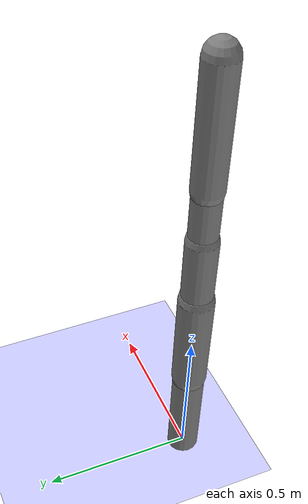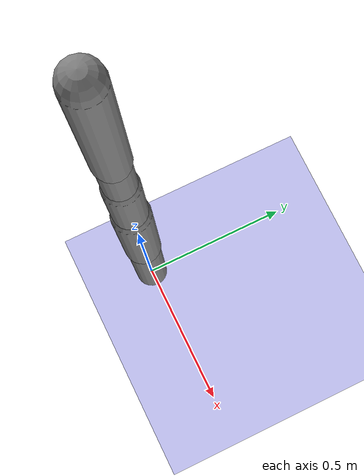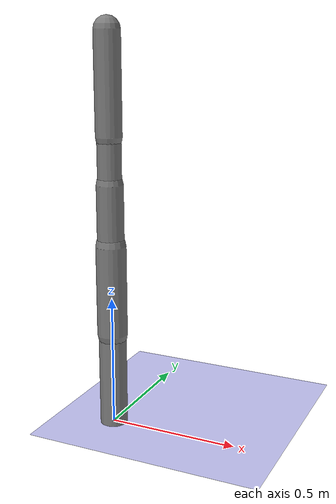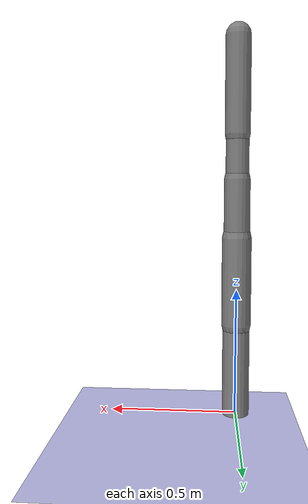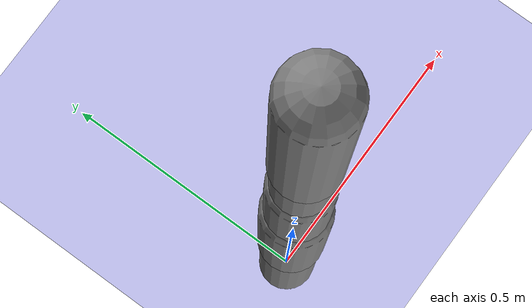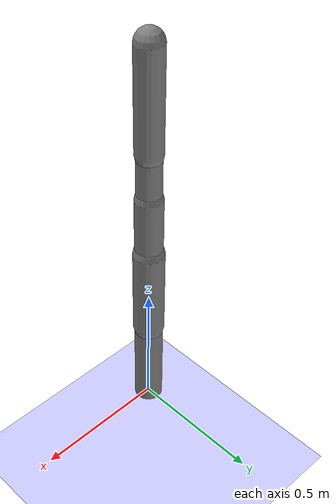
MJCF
<?xml version='1.0' encoding='UTF-8'?>
<mujoco model="robot_model">
  <worldbody>
    <light name="light" pos="0 -3 10" dir="0 0.5 -1" diffuse=".8 .8 .8" specular="0.1 0.1 0.1"/>
    <geom name="floor" type="plane" size="10.0 10.0 0.1" pos="0 0 0" rgba="0.8 0.8 1 1" contype="2" conaffinity="1"/>
    <body name="limb0" pos="0 0 0">
      <geom type="capsule" fromto="0 0 0 0 0 0.43667502796948376" size="0.05318770075002364" density="510.93174522819857" contype="1" conaffinity="2"/>
      <site type="sphere" size="0.01" name="limb0_site0" pos="0 0 0.36127572358789767"/>
      <freejoint name="limb0_root"/>
      <body name="limb1" pos="0 0 0.36127572358789767">
        <geom type="capsule" fromto="0 0 0 0 0 0.34784341191026547" size="0.05780096325172323" density="1003.386613734127" contype="1" conaffinity="2"/>
        <site type="sphere" size="0.01" name="limb1_site0" pos="0 0 0.31642392427221155"/>
        <site type="sphere" size="0.01" name="limb1_site1" pos="0 0 0.12395905969548064"/>
        <site type="sphere" size="0.01" name="limb1_site2" pos="0 0 0.06927704373718688"/>
        <body name="limb2" pos="0 0 0.31642392427221155">
          <geom type="capsule" fromto="0 0 0 0 0 0.5" size="0.045329815490319995" density="1017.2531489540214" contype="1" conaffinity="2"/>
          <site type="sphere" size="0.01" name="limb2_site0" pos="0 0 0.28431863432086774"/>
          <site type="sphere" size="0.01" name="limb2_site1" pos="0 0 0.4365154153176309"/>
          <body name="limb3" pos="0 0 0.28431863432086774">
            <geom type="capsule" fromto="0 0 0 0 0 0.19166066799868264" size="0.0314707546179414" density="956.2416848734547" contype="1" conaffinity="2"/>
            <joint name="joint_limb2_limb3_0" type="hinge" axis="0 1 0" range="-51.59203017742993 51.59203017742993" damping="5.0"/>
          </body>
          <body name="limb4" pos="0 0 0.4365154153176309">
            <geom type="capsule" fromto="0 0 0 0 0 0.378171156067034" size="0.04960379875638113" density="1020.0145094172238" contype="1" conaffinity="2"/>
            <joint name="joint_limb2_limb4_0" type="hinge" axis="1 0 0" range="-38.680136556965635 38.680136556965635" damping="5.0"/>
          </body>
          <joint name="joint_limb1_limb2_0" type="hinge" axis="0 1 0" range="-60.504894728636025 60.504894728636025" damping="5.0"/>
        </body>
        <body name="limb5" pos="0 0 0.12395905969548064">
          <geom type="capsule" fromto="0 0 0 0 0 0.4553959547646001" size="0.05112992904407712" density="905.1932138092933" contype="1" conaffinity="2"/>
          <joint name="joint_limb1_limb5_0" type="hinge" axis="0 0 1" range="-65.9823599983076 65.9823599983076" damping="5.0"/>
        </body>
        <body name="limb6" pos="0 0 0.06927704373718688">
          <geom type="capsule" fromto="0 0 0 0 0 0.44552404738132806" size="0.039556271122214166" density="1076.0934479971258" contype="1" conaffinity="2"/>
          <joint name="joint_limb1_limb6_0" type="hinge" axis="0 0 1" range="-20.0 20.0" damping="5.0"/>
        </body>
        <joint name="joint_limb0_limb1_0" type="hinge" axis="0 1 0" range="-97.72934962860585 97.72934962860585" damping="5.0"/>
      </body>
    </body>
  </worldbody>
  <actuator>
    <position name="position_actuator_joint_limb0_limb1_0" joint="joint_limb0_limb1_0" gear="2.0" inheritrange="1" forcerange="-22.374671965647444 22.374671965647444" forcelimited="true" kp="100.0"/>
    <position name="position_actuator_joint_limb1_limb2_0" joint="joint_limb1_limb2_0" gear="1.855224638398584" inheritrange="1" forcerange="-18.401183504925072 18.401183504925072" forcelimited="true" kp="100.0"/>
    <position name="position_actuator_joint_limb2_limb3_0" joint="joint_limb2_limb3_0" gear="1.8009346564222402" inheritrange="1" forcerange="-3.4754816031092273 3.4754816031092273" forcelimited="true" kp="100.0"/>
    <position name="position_actuator_joint_limb2_limb4_0" joint="joint_limb2_limb4_0" gear="1.5727331217504008" inheritrange="1" forcerange="-17.516274913506823 17.516274913506823" forcelimited="true" kp="100.0"/>
    <position name="position_actuator_joint_limb1_limb5_0" joint="joint_limb1_limb5_0" gear="0.9865253178883315" inheritrange="1" forcerange="-19.46191769120985 19.46191769120985" forcelimited="true" kp="100.0"/>
    <position name="position_actuator_joint_limb1_limb6_0" joint="joint_limb1_limb6_0" gear="1.7866470493797637" inheritrange="1" forcerange="-13.178366538205218 13.178366538205218" forcelimited="true" kp="100.0"/>
  </actuator>
</mujoco>
